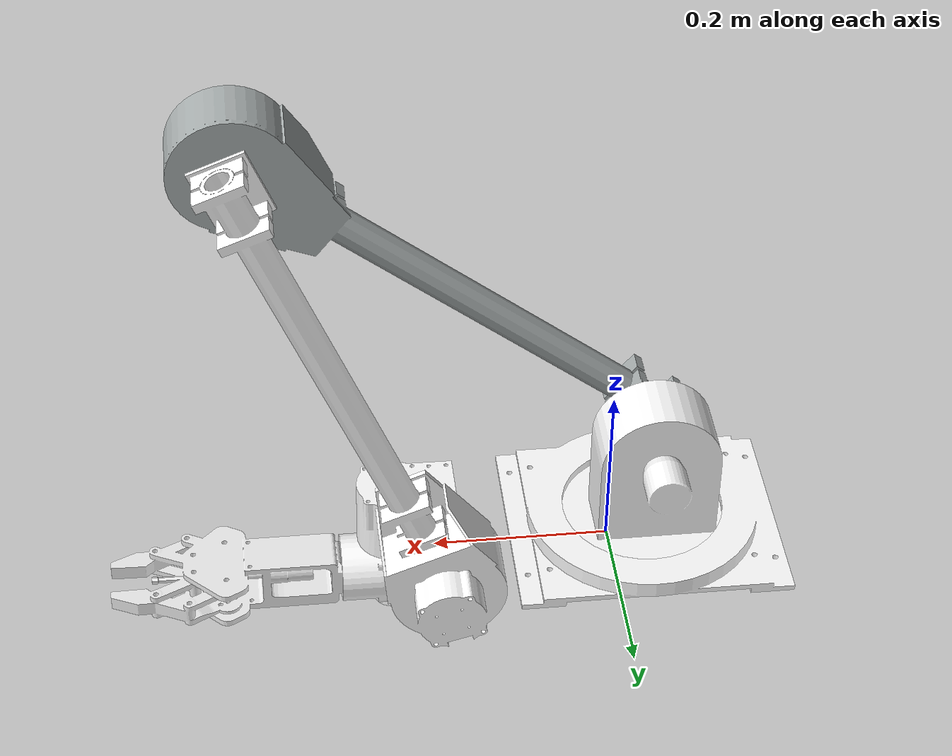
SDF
<sdf version='1.9'>
  <model name='arm'>
    <link name='dummy'>
      <inertial>
        <pose>-0.0420894636209823 -0.0119430230768063 0.014020548545619 0 0 0</pose>
        <mass>2.9852104670099702</mass>
        <inertia>
          <ixx>0.0175339728289488</ixx>
          <ixy>1.134383821050486e-19</ixy>
          <ixz>-1.1185181677560269e-20</ixz>
          <iyy>0.015905081715852299</iyy>
          <iyz>1.0511170183766749e-18</iyz>
          <izz>0.033340805189063003</izz>
        </inertia>
      </inertial>
      <collision name='dummy_fixed_joint_lump__base_link_collision'>
        <pose>0 0 0 0 0 0</pose>
        <geometry>
          <mesh>
            <scale>1 1 1</scale>
            <uri>model://meshes/base.STL</uri>
          </mesh>
        </geometry>
      </collision>
      <visual name='dummy_fixed_joint_lump__base_link_visual'>
        <pose>0 0 0 0 0 0</pose>
        <geometry>
          <mesh>
            <scale>1 1 1</scale>
            <uri>model://meshes/base.STL</uri>
          </mesh>
        </geometry>
        <material>
          <diffuse>1 1 1 1</diffuse>
          <ambient>1 1 1 1</ambient>
        </material>
      </visual>
    </link>
    <joint name='base_yaw_joint' type='revolute'>
      <pose relative_to='dummy'>-0.0420894636209815 -0.0119616169931191 0.0182598424192986 1.5707963267949 4.111543425206352e-17 1.05545161052463</pose>
      <parent>dummy</parent>
      <child>shoulder_link</child>
      <axis>
        <xyz>0 1 0</xyz>
        <limit>
          <lower>-3.1415926535897931</lower>
          <upper>3.1415926535897931</upper>
          <effort>1000</effort>
          <velocity>2.5</velocity>
        </limit>
        <dynamics>
          <spring_reference>0</spring_reference>
          <spring_stiffness>0</spring_stiffness>
        </dynamics>
      </axis>
    </joint>
    <link name='shoulder_link'>
      <pose relative_to='base_yaw_joint'>0 0 0 0 0 0</pose>
      <inertial>
        <pose>0.00527918694960809 0.07748199168015781 -0.0133622294690042 0 0 0</pose>
        <mass>4.5425843846421703</mass>
        <inertia>
          <ixx>0.0149524360381011</ixx>
          <ixy>1.05243789551392e-08</ixy>
          <ixz>-0.0017524703987240699</ixz>
          <iyy>0.0097049330132567002</iyy>
          <iyz>-6.4244674545168101e-09</iyz>
          <izz>0.012850990161083301</izz>
        </inertia>
      </inertial>
      <collision name='shoulder_link_collision'>
        <pose>0 0 0 0 0 0</pose>
        <geometry>
          <mesh>
            <scale>1 1 1</scale>
            <uri>model://arm/description/meshes/shoulder.STL</uri>
          </mesh>
        </geometry>
      </collision>
      <visual name='shoulder_link_visual'>
        <pose>0 0 0 0 0 0</pose>
        <geometry>
          <mesh>
            <scale>1 1 1</scale>
            <uri>model://arm/description/meshes/shoulder.STL</uri>
          </mesh>
        </geometry>
        <material>
          <diffuse>1 1 1 1</diffuse>
          <ambient>1 1 1 1</ambient>
        </material>
      </visual>
    </link>
    <joint name='shoulder_pitch_joint' type='revolute'>
      <pose relative_to='shoulder_link'>-0.0357971138440272 0.108175 0.00906194434350591 2.47061567686307 0.5153447162702681 -2.219503101805639e-19</pose>
      <parent>shoulder_link</parent>
      <child>bicep_link</child>
      <axis>
        <xyz>-1 0 0</xyz>
        <limit>
          <lower>-3.1415926535897931</lower>
          <upper>3.1415926535897931</upper>
          <effort>1000</effort>
          <velocity>2.5</velocity>
        </limit>
        <dynamics>
          <spring_reference>0</spring_reference>
          <spring_stiffness>0</spring_stiffness>
        </dynamics>
      </axis>
    </joint>
    <link name='bicep_link'>
      <pose relative_to='shoulder_pitch_joint'>0 0 0 0 0 0</pose>
      <inertial>
        <pose>-0.0416416588937773 -7.41489180611232e-08 -0.48063013151933 0 0 0</pose>
        <mass>4.2115739701460697</mass>
        <inertia>
          <ixx>0.026518336848638201</ixx>
          <ixy>1.2339772092184e-08</ixy>
          <ixz>-8.0388083234103e-06</ixz>
          <iyy>0.023824167896963601</iyy>
          <iyz>1.47058893537003e-08</iyz>
          <izz>0.00481440620919812</izz>
        </inertia>
      </inertial>
      <collision name='bicep_link_collision'>
        <pose>0 0 0 0 0 0</pose>
        <geometry>
          <mesh>
            <scale>1 1 1</scale>
            <uri>model://arm/description/meshes/bicep.STL</uri>
          </mesh>
        </geometry>
      </collision>
      <visual name='bicep_link_visual'>
        <pose>0 0 0 0 0 0</pose>
        <geometry>
          <mesh>
            <scale>1 1 1</scale>
            <uri>model://arm/description/meshes/bicep.STL</uri>
          </mesh>
        </geometry>
        <material>
          <diffuse>0.661765 0.686275 0.686275 1</diffuse>
          <ambient>0.661765 0.686275 0.686275 1</ambient>
        </material>
      </visual>
    </link>
    <joint name='elbow_pitch_joint' type='revolute'>
      <pose relative_to='bicep_link'>0.0030875 0 -0.58189 0.51635 7.195088970893212e-23 -3.141585307179587</pose>
      <parent>bicep_link</parent>
      <child>forearm_link</child>
      <axis>
        <xyz>-1 0 0</xyz>
        <limit>
          <lower>-3.1415926535897931</lower>
          <upper>3.1415926535897931</upper>
          <effort>1000</effort>
          <velocity>2.5</velocity>
        </limit>
        <dynamics>
          <spring_reference>0</spring_reference>
          <spring_stiffness>0</spring_stiffness>
        </dynamics>
      </axis>
    </joint>
    <link name='forearm_link'>
      <pose relative_to='elbow_pitch_joint'>0 0 0 0 0 0</pose>
      <inertial>
        <pose>-0.0433904621274588 4.81371441699019e-06 0.483997979293337 0 0 0</pose>
        <mass>4.35871818699448</mass>
        <inertia>
          <ixx>0.0266896327168114</ixx>
          <ixy>1.5431184182739501e-07</ixy>
          <ixz>6.6123138623610104e-06</ixz>
          <iyy>0.023915444728424998</iyy>
          <iyz>-7.15857024670289e-07</iyz>
          <izz>0.0049123020620024703</izz>
        </inertia>
      </inertial>
      <collision name='forearm_link_collision'>
        <pose>0 0 0 0 0 0</pose>
        <geometry>
          <mesh>
            <scale>1 1 1</scale>
            <uri>model://arm/description/meshes/forearm.STL</uri>
          </mesh>
        </geometry>
      </collision>
      <visual name='forearm_link_visual'>
        <pose>0 0 0 0 0 0</pose>
        <geometry>
          <mesh>
            <scale>1 1 1</scale>
            <uri>model://arm/description/meshes/forearm.STL</uri>
          </mesh>
        </geometry>
        <material>
          <diffuse>1 1 1 1</diffuse>
          <ambient>1 1 1 1</ambient>
        </material>
      </visual>
    </link>
    <joint name='wrist_pitch_joint' type='revolute'>
      <pose relative_to='forearm_link'>0 0 0.581887499995086 1.29896997033974 -0.262305000585875 2.39226953786024</pose>
      <parent>forearm_link</parent>
      <child>wrist_pitch_link</child>
      <axis>
        <xyz>-0.707107 0 0.707107</xyz>
        <limit>
          <lower>-3.1415926535897931</lower>
          <upper>3.1415926535897931</upper>
          <effort>1000</effort>
          <velocity>2.5</velocity>
        </limit>
        <dynamics>
          <spring_reference>0</spring_reference>
          <spring_stiffness>0</spring_stiffness>
        </dynamics>
      </axis>
    </joint>
    <link name='wrist_pitch_link'>
      <pose relative_to='wrist_pitch_joint'>0 0 0 0 0 0</pose>
      <inertial>
        <pose>-0.0455611950385227 -0.00725901759095772 0.009920706027536971 0 0 0</pose>
        <mass>0.86236150071067996</mass>
        <inertia>
          <ixx>0.0011893656582136101</ixx>
          <ixy>8.1104684346355098e-05</ixy>
          <ixz>-8.67557302037531e-05</ixz>
          <iyy>0.00086886430403283201</iyy>
          <iyz>8.97048798969999e-05</iyz>
          <izz>0.00119688008723862</izz>
        </inertia>
      </inertial>
      <collision name='wrist_pitch_link_collision'>
        <pose>0 0 0 0 0 0</pose>
        <geometry>
          <mesh>
            <scale>1 1 1</scale>
            <uri>model://arm/description/meshes/wrist pitch.STL</uri>
          </mesh>
        </geometry>
      </collision>
      <visual name='wrist_pitch_link_visual'>
        <pose>0 0 0 0 0 0</pose>
        <geometry>
          <mesh>
            <scale>1 1 1</scale>
            <uri>model://arm/description/meshes/wrist pitch.STL</uri>
          </mesh>
        </geometry>
        <material>
          <diffuse>1 1 1 1</diffuse>
          <ambient>1 1 1 1</ambient>
        </material>
      </visual>
    </link>
    <joint name='wrist_yaw_joint' type='revolute'>
      <pose relative_to='wrist_pitch_link'>0.017777291445819 0 -0.017777291445819 -0.9635975473601901 0.5184980410495011 0.9511944257736339</pose>
      <parent>wrist_pitch_link</parent>
      <child>wrist_yaw_link</child>
      <axis>
        <xyz>0.706887 0.017617 0.707107</xyz>
        <limit>
          <lower>-3.1415926535897931</lower>
          <upper>3.1415926535897931</upper>
          <effort>1000</effort>
          <velocity>2.5</velocity>
        </limit>
        <dynamics>
          <spring_reference>0</spring_reference>
          <spring_stiffness>0</spring_stiffness>
        </dynamics>
      </axis>
    </joint>
    <link name='wrist_yaw_link'>
      <pose relative_to='wrist_yaw_joint'>0 0 0 0 0 0</pose>
      <inertial>
        <pose>-0.00573736378208815 0.0709654882442483 0.08636231630849479 0 0 0</pose>
        <mass>0.35886867343887502</mass>
        <inertia>
          <ixx>0.00041430959860063902</ixx>
          <ixy>-9.2583446541486995e-06</ixy>
          <ixz>-1.42368460656332e-05</ixz>
          <iyy>0.00035655418795287199</iyy>
          <iyz>-1.7963681894808099e-08</iyz>
          <izz>0.00041349714164066201</izz>
        </inertia>
      </inertial>
      <collision name='wrist_yaw_link_collision'>
        <pose>0 0 0 0 0 0</pose>
        <geometry>
          <mesh>
            <scale>1 1 1</scale>
            <uri>model://arm/description/meshes/wrist yaw.STL</uri>
          </mesh>
        </geometry>
      </collision>
      <visual name='wrist_yaw_link_visual'>
        <pose>0 0 0 0 0 0</pose>
        <geometry>
          <mesh>
            <scale>1 1 1</scale>
            <uri>model://arm/description/meshes/wrist yaw.STL</uri>
          </mesh>
        </geometry>
        <material>
          <diffuse>1 1 1 1</diffuse>
          <ambient>1 1 1 1</ambient>
        </material>
      </visual>
    </link>
    <joint name='wrist_roll_joint' type='revolute'>
      <pose relative_to='wrist_yaw_link'>0.00632947155943084 0.272267270409697 0.1004658595574 -1.56931940382504 -0.8275470581813221 3.13950582346102</pose>
      <parent>wrist_yaw_link</parent>
      <child>wrist_roll_link</child>
      <axis>
        <xyz>0.000668 0.01766 -0.999844</xyz>
        <limit>
          <lower>-3.1415926535897931</lower>
          <upper>3.1415926535897931</upper>
          <effort>1000</effort>
          <velocity>2.5</velocity>
        </limit>
        <dynamics>
          <spring_reference>0</spring_reference>
          <spring_stiffness>0</spring_stiffness>
        </dynamics>
      </axis>
    </joint>
    <link name='wrist_roll_link'>
      <pose relative_to='wrist_roll_joint'>0 0 0 0 0 0</pose>
      <inertial>
        <pose>-0.00276942184890096 0.0187204574927389 0.0271220665563111 0 0 0</pose>
        <mass>0.57859407781531302</mass>
        <inertia>
          <ixx>0.00049174931542777004</ixx>
          <ixy>-3.3897062265723002e-06</ixy>
          <ixz>-1.18435403501392e-07</ixz>
          <iyy>0.00057218353360479195</iyy>
          <iyz>9.7840554837207992e-06</iyz>
          <izz>0.000301532531672388</izz>
        </inertia>
      </inertial>
      <collision name='wrist_roll_link_collision'>
        <pose>0 0 0 0 0 0</pose>
        <geometry>
          <mesh>
            <scale>1 1 1</scale>
            <uri>model://arm/description/meshes/wrist roll.STL</uri>
          </mesh>
        </geometry>
      </collision>
      <visual name='wrist_roll_link_visual'>
        <pose>0 0 0 0 0 0</pose>
        <geometry>
          <mesh>
            <scale>1 1 1</scale>
            <uri>model://arm/description/meshes/wrist roll.STL</uri>
          </mesh>
        </geometry>
        <material>
          <diffuse>0.941176 0.941176 0.941176 1</diffuse>
          <ambient>0.941176 0.941176 0.941176 1</ambient>
        </material>
      </visual>
    </link>
    <plugin name='ign_ros2_control::IgnitionROS2ControlPlugin' filename='ign_ros2_control-system'>
      <parameters>$(find arm)/config/arm_controller.yaml</parameters>
    </plugin>
    <frame name='dummy_joint' attached_to='dummy'>
      <pose>0 0 0 0 -0 0</pose>
    </frame>
    <frame name='base_link' attached_to='dummy_joint'/>
  </model>
</sdf>
